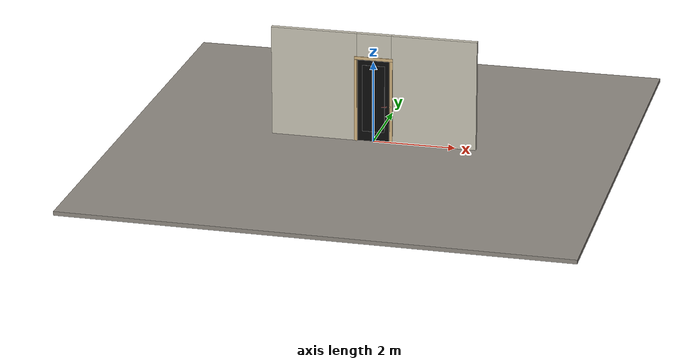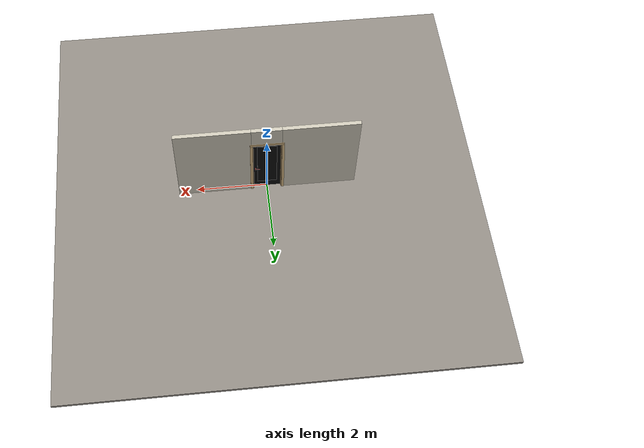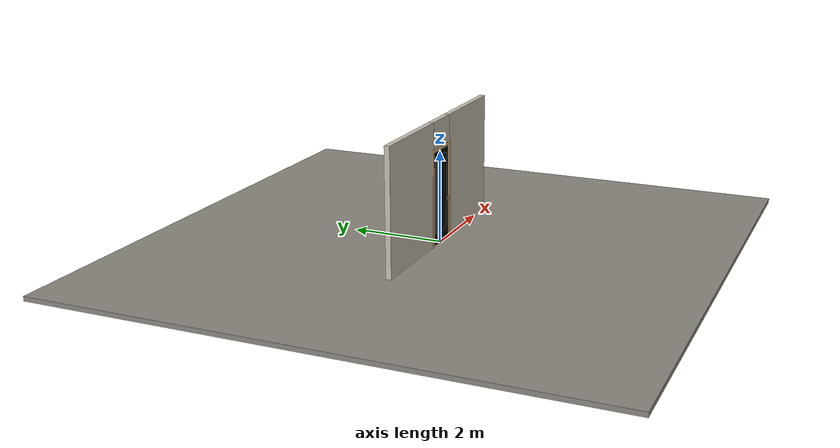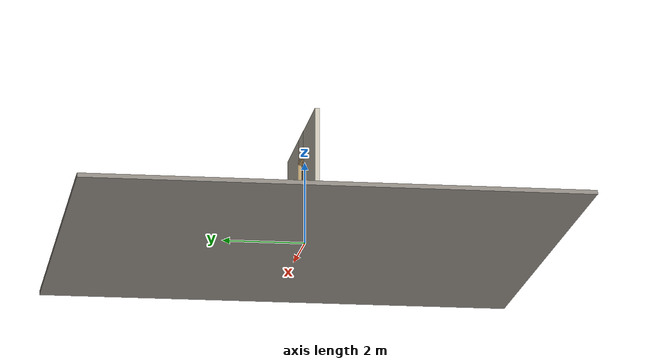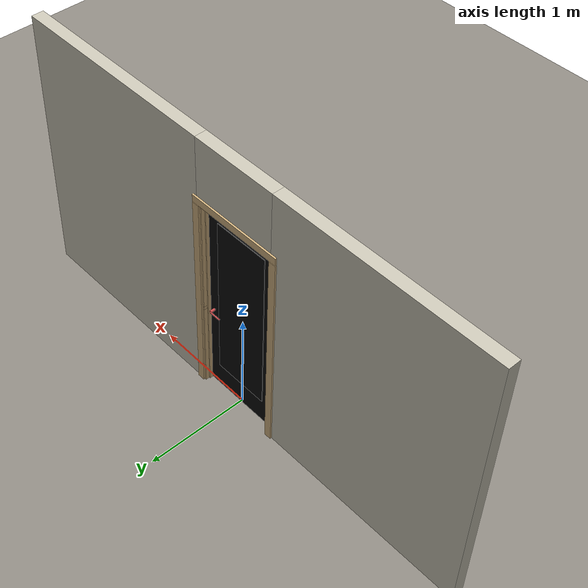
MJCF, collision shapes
<?xml version="1.0" ?>
<mujoco model="db0653_swing_single_full">
  <compiler angle="radian" meshdir="../../hardware" texturedir="../../textures" autolimits="true" inertiafromgeom="false"/>
  <option timestep="0.002" integrator="implicitfast" cone="elliptic" impratio="10" noslip_iterations="3">
    <flag multiccd="enable"/>
  </option>
  <size memory="16M"/>
  <default>
    <geom condim="4" solref="0.005 1" solimp="0.95 0.99 0.001"/>
    <joint solreflimit="0.005 1" solimplimit="0.95 0.99 0.001"/>
    <tendon solreflimit="0.005 1"/>
    <equality solref="0.002 1"/>
  </default>
  <visual>
    <headlight ambient="0.4 0.4 0.4" diffuse="0.7 0.7 0.7" specular="0.2 0.2 0.2"/>
    <quality shadowsize="4096"/>
    <map znear="0.01" zfar="60"/>
  </visual>
  <asset>
    <mesh name="hinge_b1c89c1db8" file="hinge_b1c89c1db8.obj"/>
    <mesh name="hinge_jamb_1d7c7d2bbd" file="hinge_jamb_1d7c7d2bbd.obj"/>
    <mesh name="lever_57205841c3" file="lever_57205841c3.obj"/>
    <material name="mat_floor" rgba="0.55 0.53 0.5 1" specular="0.2" shininess="0.15" reflectance="0"/>
    <material name="mat_wall" rgba="0.78 0.76 0.7 1" specular="0.2" shininess="0.1" reflectance="0"/>
    <material name="mat_leaf" rgba="0.04 0.04 0.04 1" specular="0.2" shininess="0.49" reflectance="0"/>
    <material name="mat_leaf_panel" rgba="0.037 0.037 0.037 1" specular="0.2" shininess="0.49" reflectance="0"/>
    <material name="mat_hinge" rgba="0.65 0.66 0.68 1" specular="0.74" shininess="0.5" reflectance="0.36"/>
    <material name="mat_op_black_matte_metal" rgba="0.05 0.05 0.05 1" specular="0.38" shininess="0.3" reflectance="0.12"/>
    <material name="mat_trim" rgba="0.85 0.66 0.3 1" specular="0.8" shininess="0.75" reflectance="0.4"/>
    <material name="mat_bolt" rgba="0.85 0.66 0.3 1" specular="0.8" shininess="0.75" reflectance="0.4"/>
    <material name="mat_frame" rgba="0.82 0.7 0.5 1" specular="0.2" shininess="0.45" reflectance="0"/>
    <texture name="skybox" type="skybox" builtin="gradient" rgb1="0.6 0.7 0.85" rgb2="0.9 0.92 0.95" width="256" height="256"/>
  </asset>
  <worldbody>
    <light name="sun" pos="1.5 -2.5 4" dir="-0.3 0.5 -0.8" directional="true" diffuse="0.8 0.8 0.8" specular="0.3 0.3 0.3" castshadow="true"/>
    <light name="fill" pos="-1.5 2.5 3" dir="0.3 -0.5 -0.7" directional="true" diffuse="0.35 0.35 0.4" castshadow="false"/>
    <camera name="robot_view" pos="0 -2.511687 1.734312" xyaxes="1 0 0 0 0.26963 0.962964" fovy="52"/>
    <camera name="far_view" pos="0 2.572687 1.734312" xyaxes="-1 0 0 0 -0.26963 0.962964" fovy="52"/>
    <camera name="iso" pos="1.932062 -2.104938 2.141063" xyaxes="0.741536 0.670913 0 -0.242917 0.268487 0.932151" fovy="46"/>
    <camera name="detail_handle" pos="0.4045 -0.875 1.194" xyaxes="0.97561 0.219512 0 -0.070934 0.315262 0.94635" fovy="38"/>
    <geom name="floor" type="box" size="6 6 0.05" pos="0 0 -0.05" material="mat_floor" group="0" contype="1" conaffinity="1" friction="0.8 0.005 0.0001" density="2400"/>
    <geom name="wall_left" type="box" size="1.04825 0.0575 1.35" pos="-1.45175 0.0305 1.35" material="mat_wall" group="0" contype="1" conaffinity="1" friction="0.6 0.005 0.0001" density="800"/>
    <geom name="wall_right" type="box" size="1.03325 0.0575 1.35" pos="1.46675 0.0305 1.35" material="mat_wall" group="0" contype="1" conaffinity="1" friction="0.6 0.005 0.0001" density="800"/>
    <geom name="wall_header" type="box" size="0.4185 0.0575 0.303" pos="0.015 0.0305 2.397" material="mat_wall" group="0" contype="1" conaffinity="1" friction="0.6 0.005 0.0001" density="800"/>
    <geom name="hinge_0_jamb" type="mesh" mesh="hinge_jamb_1d7c7d2bbd" pos="-0.3815 -0.027 0.259" material="mat_hinge" group="1" contype="0" conaffinity="0" density="7850"/>
    <geom name="hinge_1_jamb" type="mesh" mesh="hinge_jamb_1d7c7d2bbd" pos="-0.3815 -0.027 1.025" material="mat_hinge" group="1" contype="0" conaffinity="0" density="7850"/>
    <geom name="hinge_2_jamb" type="mesh" mesh="hinge_jamb_1d7c7d2bbd" pos="-0.3815 -0.027 1.861" material="mat_hinge" group="1" contype="0" conaffinity="0" density="7850"/>
    <geom name="jamb_hinge" type="box" size="0.0095 0.0575 1.0225" pos="-0.394 0.0305 1.0225" material="mat_frame" group="0" contype="1" conaffinity="1" friction="0.6 0.005 0.0001" density="400"/>
    <geom name="strike_914_wall_n" type="box" size="0.0245 0.040075 0.0167" pos="0.409 0.047925 0.914" material="mat_frame" group="0" contype="1" conaffinity="1" friction="0.6 0.005 0.0001" density="400"/>
    <geom name="strike_914_wall_p" type="box" size="0.0245 0.008 0.0167" pos="0.409 -0.01585 0.914" material="mat_frame" group="0" contype="1" conaffinity="1" friction="0.6 0.005 0.0001" density="400"/>
    <geom name="strike_914_ramp" type="box" size="0.0245 0.01649 0.0167" pos="0.413636 -0.028673 0.914" quat="0.977148 0 0 0.212558" material="mat_frame" group="0" contype="1" conaffinity="1" friction="0.12 0.005 0.0001" density="400"/>
    <geom name="strike_914_back" type="box" size="0.01615 0.00785 0.0167" pos="0.41735 0 0.914" material="mat_frame" group="0" contype="1" conaffinity="1" friction="0.6 0.005 0.0001" density="400"/>
    <geom name="jamb_strike_0" type="box" size="0.0245 0.0575 0.44865" pos="0.409 0.0305 0.44865" material="mat_frame" group="0" contype="1" conaffinity="1" friction="0.6 0.005 0.0001" density="400"/>
    <geom name="jamb_strike_1" type="box" size="0.0245 0.0575 0.55715" pos="0.409 0.0305 1.48785" material="mat_frame" group="0" contype="1" conaffinity="1" friction="0.6 0.005 0.0001" density="400"/>
    <geom name="jamb_head" type="box" size="0.4185 0.0575 0.0095" pos="0.015 0.0305 2.0545" material="mat_frame" group="0" contype="1" conaffinity="1" friction="0.6 0.005 0.0001" density="400"/>
    <geom name="head_stud" type="box" size="0.4185 0.0575 0.015" pos="0.015 0.0305 2.079" material="mat_wall" group="0" contype="1" conaffinity="1" friction="0.6 0.005 0.0001" density="500"/>
    <geom name="stop_hinge" type="box" size="0.0055 0.016 1.0225" pos="-0.379 0.0365 1.0225" material="mat_frame" group="0" contype="1" conaffinity="1" friction="0.6 0.005 0.0001" density="400"/>
    <geom name="stop_strike" type="box" size="0.0055 0.016 1.0225" pos="0.379 0.0365 1.0225" material="mat_frame" group="0" contype="1" conaffinity="1" friction="0.6 0.005 0.0001" density="400"/>
    <geom name="stop_head" type="box" size="0.3845 0.016 0.0055" pos="0 0.0365 2.0395" material="mat_frame" group="0" contype="1" conaffinity="1" friction="0.6 0.005 0.0001" density="400"/>
    <geom name="casing_l_n" type="box" size="0.035 0.008 1.032" pos="-0.4335 -0.035 1.0225" material="mat_frame" group="2" contype="0" conaffinity="0" density="400"/>
    <geom name="casing_r_n" type="box" size="0.035 0.008 1.032" pos="0.4335 -0.035 1.0225" material="mat_frame" group="2" contype="0" conaffinity="0" density="400"/>
    <geom name="casing_h_n" type="box" size="0.4685 0.008 0.035" pos="0 -0.035 2.094" material="mat_frame" group="2" contype="0" conaffinity="0" density="400"/>
    <geom name="casing_l_p" type="box" size="0.035 0.008 1.032" pos="-0.4335 0.096 1.0225" material="mat_frame" group="2" contype="0" conaffinity="0" density="400"/>
    <geom name="casing_r_p" type="box" size="0.035 0.008 1.032" pos="0.4335 0.096 1.0225" material="mat_frame" group="2" contype="0" conaffinity="0" density="400"/>
    <geom name="casing_h_p" type="box" size="0.4685 0.008 0.035" pos="0 0.096 2.094" material="mat_frame" group="2" contype="0" conaffinity="0" density="400"/>
    <site name="approach_point" pos="0 -1.5 0" quat="1 0 0 0" size="0.05" rgba="0.2 0.9 0.2 0.5" group="4"/>
    <site name="goal_point" pos="0 1.5 0" quat="1 0 0 0" size="0.05" rgba="0.2 0.9 0.2 0.5" group="4"/>
    <site name="door_plane_center" pos="0 0 1.0225" quat="1 0 0 0" size="0.02" rgba="0.2 0.9 0.2 0.5" group="4"/>
    <body name="leaf" pos="-0.3845 0 0">
      <inertial pos="0.377749 -0.00029 1.02537" mass="41.651125" quat="-0.499594 0.500676 -0.499314 -0.500414" diaginertia="2.088242911 14.391156495 16.467803601"/>
      <joint name="leaf_hinge" type="hinge" axis="0 0 -1" pos="0.003 -0.027 0" limited="true" range="0 2.356194" damping="0.173726" frictionloss="0.63801" armature="0.02"/>
      <geom name="leaf_slab" type="box" size="0.381 0.02 1.016" pos="0.384 0 1.025" material="mat_leaf" group="0" contype="1" conaffinity="1" friction="0.4 0.005 0.0001" density="1"/>
      <geom name="leaf_panel_0_n" type="box" size="0.271 0.003 0.83344" pos="0.384 -0.023 1.08596" material="mat_leaf_panel" group="1" contype="0" conaffinity="0" density="1"/>
      <geom name="leaf_panel_0_p" type="box" size="0.271 0.003 0.83344" pos="0.384 0.023 1.08596" material="mat_leaf_panel" group="1" contype="0" conaffinity="0" density="1"/>
      <geom name="hinge_0" type="mesh" mesh="hinge_b1c89c1db8" pos="0.003 -0.027 0.259" material="mat_hinge" group="1" contype="0" conaffinity="0" density="7850"/>
      <geom name="hinge_1" type="mesh" mesh="hinge_b1c89c1db8" pos="0.003 -0.027 1.025" material="mat_hinge" group="1" contype="0" conaffinity="0" density="7850"/>
      <geom name="hinge_2" type="mesh" mesh="hinge_b1c89c1db8" pos="0.003 -0.027 1.861" material="mat_hinge" group="1" contype="0" conaffinity="0" density="7850"/>
      <geom name="leaf_latch_bolt_faceplate" type="box" size="0.0006 0.01235 0.0267" pos="0.7644 0 0.914" material="mat_bolt" group="1" contype="0" conaffinity="0" density="8500"/>
      <site name="leaf_edge_mid" pos="0.765 0 1.016" quat="1 0 0 0" size="0.02" rgba="0.2 0.9 0.2 0.5" group="4"/>
      <body name="leaf_handle" pos="0.705 0 0.914">
        <inertial pos="-0.018323 -0.000822 0" mass="0.810923" quat="0.710022 0 0 -0.704179" diaginertia="0.001007977 0.002485798 0.003389085"/>
        <joint name="leaf_handle_hinge" type="hinge" axis="0 -1 0" limited="true" range="0 0.87" damping="0.212418" frictionloss="0.042" stiffness="1" springref="-0.35" armature="0.01"/>
        <geom name="leaf_handle_spindle" type="cylinder" size="0.006 0.028" pos="0 0 0" quat="0.707107 -0.707107 0 0" material="mat_op_black_matte_metal" group="1" contype="0" conaffinity="0" density="7850"/>
        <geom name="leaf_handle_lever_n" type="mesh" mesh="lever_57205841c3" pos="0 -0.02 0" quat="0.707107 0.707107 0 0" material="mat_op_black_matte_metal" group="1" contype="0" conaffinity="0" density="3000"/>
        <geom name="leaf_handle_lever_col_n" type="capsule" size="0.007 0.053" pos="-0.06 -0.075 0" quat="0.707107 0 -0.707107 0" material="mat_op_black_matte_metal" group="3" contype="1" conaffinity="1" rgba="0.8 0.3 0.3 0.25" friction="0.7 0.01 0.0001" density="3000"/>
        <geom name="leaf_handle_hub_col_n" type="cylinder" size="0.012 0.022" pos="0 -0.05 0" quat="0.707107 -0.707107 0 0" material="mat_op_black_matte_metal" group="3" contype="1" conaffinity="1" rgba="0.8 0.3 0.3 0.25" friction="0.6 0.005 0.0001" density="3000"/>
        <geom name="leaf_handle_turn_button_n" type="cylinder" size="0.006 0.005" pos="0 -0.083 0" quat="0.707107 -0.707107 0 0" material="mat_trim" group="1" contype="0" conaffinity="0" density="7100"/>
        <geom name="leaf_handle_lever_p" type="mesh" mesh="lever_57205841c3" pos="0 0.02 0" quat="-0.707107 0.707107 0 0" material="mat_op_black_matte_metal" group="1" contype="0" conaffinity="0" density="3000"/>
        <geom name="leaf_handle_lever_col_p" type="capsule" size="0.007 0.053" pos="-0.06 0.075 0" quat="0.707107 0 -0.707107 0" material="mat_op_black_matte_metal" group="3" contype="1" conaffinity="1" rgba="0.8 0.3 0.3 0.25" friction="0.7 0.01 0.0001" density="3000"/>
        <geom name="leaf_handle_hub_col_p" type="cylinder" size="0.012 0.022" pos="0 0.05 0" quat="0.707107 -0.707107 0 0" material="mat_op_black_matte_metal" group="3" contype="1" conaffinity="1" rgba="0.8 0.3 0.3 0.25" friction="0.6 0.005 0.0001" density="3000"/>
        <site name="leaf_handle_grip_n" pos="-0.096 -0.075 0" quat="1 0 0 0" size="0.012" rgba="0.2 0.9 0.2 0.5" group="4"/>
        <site name="leaf_handle_grip_p" pos="-0.096 0.075 0" quat="1 0 0 0" size="0.012" rgba="0.2 0.9 0.2 0.5" group="4"/>
      </body>
      <body name="leaf_latch_bolt" pos="0.765 0 0.914">
        <inertial pos="-0.00865 0 0" mass="0.041419" quat="0.92388 -0.382683 0 0" diaginertia="0.000000798 0.000005598 0.000005598"/>
        <joint name="leaf_latch_bolt_slide" type="slide" axis="-1 0 0" limited="true" range="0 0.0127" damping="2" frictionloss="0.3" stiffness="300" springref="-0.008333" armature="0.1"/>
        <geom name="leaf_latch_bolt_capsule" type="capsule" size="0.00635 0.015" pos="-0.00865 0 0" quat="0.707107 0 0.707107 0" material="mat_bolt" group="0" contype="1" conaffinity="1" friction="0.2 0.005 0.0001" density="8500"/>
      </body>
    </body>
  </worldbody>
  <tendon>
    <fixed name="leaf_latch_bolt_coupling" limited="true" range="0 10">
      <joint joint="leaf_latch_bolt_slide" coef="1"/>
      <joint joint="leaf_handle_hinge" coef="-0.015679"/>
    </fixed>
  </tendon>
  <sensor>
    <jointpos name="leaf_hinge_pos" joint="leaf_hinge"/>
    <jointvel name="leaf_hinge_vel" joint="leaf_hinge"/>
    <jointpos name="leaf_handle_hinge_pos" joint="leaf_handle_hinge"/>
    <jointvel name="leaf_handle_hinge_vel" joint="leaf_handle_hinge"/>
    <jointpos name="leaf_latch_bolt_slide_pos" joint="leaf_latch_bolt_slide"/>
    <jointvel name="leaf_latch_bolt_slide_vel" joint="leaf_latch_bolt_slide"/>
  </sensor>
</mujoco>
